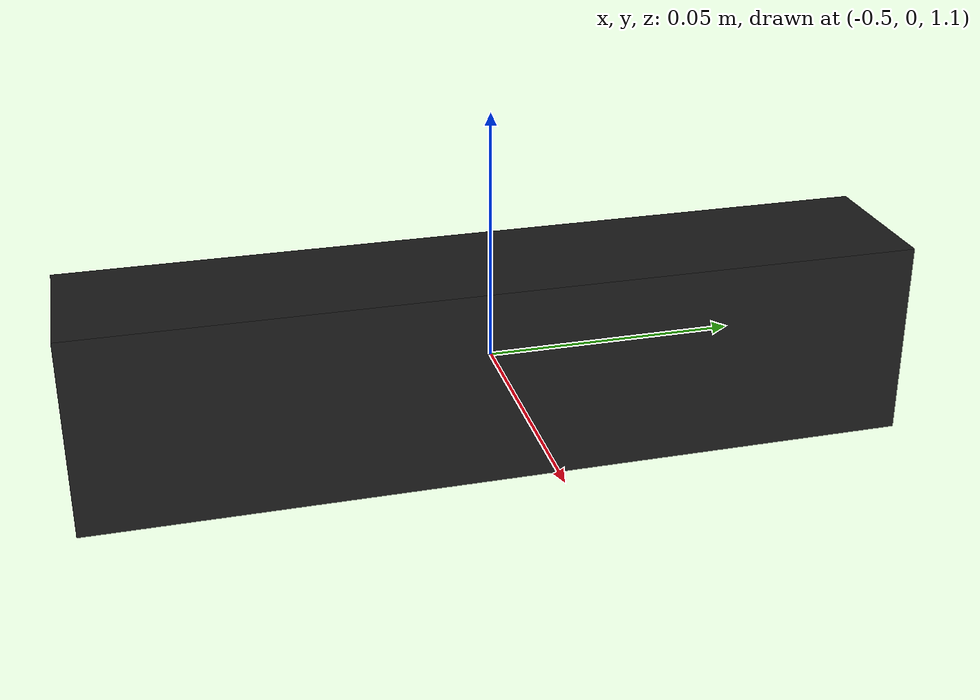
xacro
<?xml version="1.0"?>
<robot name="atlascar2_camera_tras" xmlns:xacro="http://www.ros.org/wiki/xacro">
  <xacro:arg name="x" default="-0.50"/>
  <xacro:arg name="y" default="0.0"/>
  <xacro:arg name="z" default="1.10"/>
  <xacro:arg name="roll" default="0.0"/>
  <xacro:arg name="pitch" default="0.0"/>
  <xacro:arg name="yaw" default="3.14159"/>

  <xacro:include filename="camera_tras.urdf.xacro"/>  <!-- relativo a esta pasta -->

  <link name="base_link"/>
  <xacro:camera_tras parent="base_link" x="$(arg x)" y="$(arg y)" z="$(arg z)"
                     roll="$(arg roll)" pitch="$(arg pitch)" yaw="$(arg yaw)"/>
</robot>

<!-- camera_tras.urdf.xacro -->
<robot xmlns:xacro="http://www.ros.org/wiki/xacro">

  <xacro:macro name="camera_tras" params="parent:=base_link x:=-0.50 y:=0.0 z:=1.10 roll:=0.0 pitch:=0.0 yaw:=3.14159">

    <link name="camera_tras_link">
      <!-- caixa com as dimensões aproximadas da Astra Pro (165 x 40 x 30 mm) -->
      <visual>
        <geometry><box size="0.03 0.165 0.04"/></geometry>
        <material name="preto_camara"><color rgba="0.1 0.1 0.1 1.0"/></material>
      </visual>
      <collision>
        <geometry><box size="0.03 0.165 0.04"/></geometry>
      </collision>
      <inertial>
        <mass value="0.3"/>
        <inertia ixx="0.0007" ixy="0" ixz="0" iyy="0.00006" iyz="0" izz="0.0007"/>
      </inertial>
    </link>

    <joint name="${parent}_to_camera_tras" type="fixed">
      <parent link="${parent}"/>
      <child link="camera_tras_link"/>
      <origin xyz="${x} ${y} ${z}" rpy="${roll} ${pitch} ${yaw}"/>
    </joint>

    <link name="camera_tras_optical_frame"/>
    <joint name="camera_tras_optical_joint" type="fixed">
      <parent link="camera_tras_link"/>
      <child link="camera_tras_optical_frame"/>
      <origin xyz="0 0 0" rpy="${-pi/2} 0 ${-pi/2}"/>
    </joint>

  </xacro:macro>
</robot>
